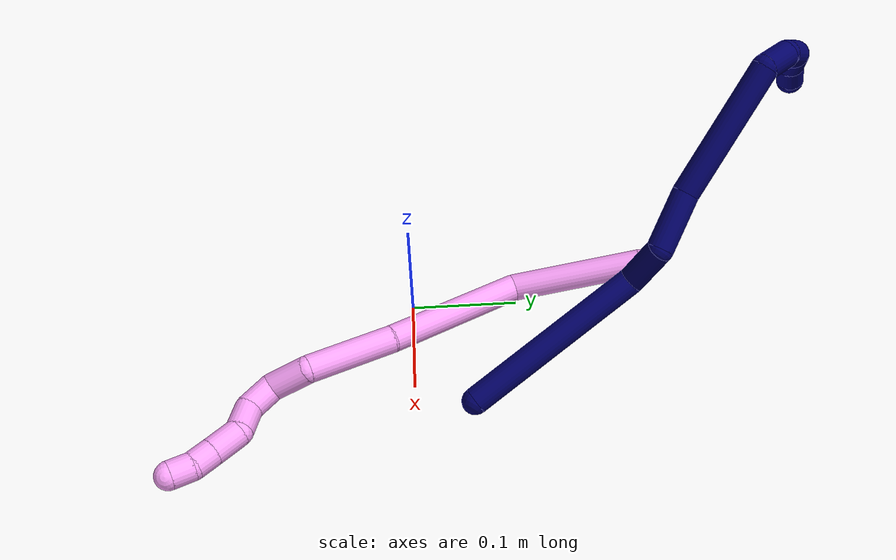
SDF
<sdf version="1.7">
 <world name="default">
  <model name="4">
   <static>0</static>
   <link name="4">
    <collision name="collision-cylinder-e_1_1_4">
     <pose>0.017106 -0.057696 0.009319 1.41067 0.284734 0.242886</pose>
     <geometry><cylinder><radius>0.0125</radius><length>0.12179</length></cylinder></geometry>
     <surface>
      <friction><ode><mu>1.16</mu><mu2>1.16</mu2><slip1>0</slip1><slip2>0</slip2></ode></friction>
      <contact><ode><kp>1e+06</kp><kd>1</kd><max_vel>0</max_vel><min_depth>0.001</min_depth></ode></contact>
     </surface>
    </collision>
    <visual name="visual-cylinder-e_1_1_4">
     <pose>0.017106 -0.057696 0.009319 1.41067 0.284734 0.242886</pose>
     <geometry><cylinder><radius>0.0125</radius><length>0.12179</length></cylinder></geometry>
     <material><ambient>1 0.65098 0.996078 1</ambient></material>
    </visual>
    <collision name="collision-cylinder-e_2_4_5">
     <pose>0.037699 -0.174745 -0.014338 2.0779 0.051324 0.087191</pose>
     <geometry><cylinder><radius>0.0125</radius><length>0.135975</length></cylinder></geometry>
     <surface>
      <friction><ode><mu>1.16</mu><mu2>1.16</mu2><slip1>0</slip1><slip2>0</slip2></ode></friction>
      <contact><ode><kp>1e+06</kp><kd>1</kd><max_vel>0</max_vel><min_depth>0.001</min_depth></ode></contact>
     </surface>
    </collision>
    <visual name="visual-cylinder-e_2_4_5">
     <pose>0.037699 -0.174745 -0.014338 2.0779 0.051324 0.087191</pose>
     <geometry><cylinder><radius>0.0125</radius><length>0.135975</length></cylinder></geometry>
     <material><ambient>1 0.65098 0.996078 1</ambient></material>
    </visual>
    <collision name="collision-cylinder-e_3_5_6">
     <pose>0.045656 -0.271027 -0.062581 1.96285 0.111365 0.166342</pose>
     <geometry><cylinder><radius>0.0125</radius><length>0.080419</length></cylinder></geometry>
     <surface>
      <friction><ode><mu>1.16</mu><mu2>1.16</mu2><slip1>0</slip1><slip2>0</slip2></ode></friction>
      <contact><ode><kp>1e+06</kp><kd>1</kd><max_vel>0</max_vel><min_depth>0.001</min_depth></ode></contact>
     </surface>
    </collision>
    <visual name="visual-cylinder-e_3_5_6">
     <pose>0.045656 -0.271027 -0.062581 1.96285 0.111365 0.166342</pose>
     <geometry><cylinder><radius>0.0125</radius><length>0.080419</length></cylinder></geometry>
     <material><ambient>1 0.65098 0.996078 1</ambient></material>
    </visual>
    <collision name="collision-cylinder-e_4_6_7">
     <pose>0.050645 -0.325865 -0.072842 1.29815 0.027982 0.021232</pose>
     <geometry><cylinder><radius>0.0125</radius><length>0.037209</length></cylinder></geometry>
     <surface>
      <friction><ode><mu>1.16</mu><mu2>1.16</mu2><slip1>0</slip1><slip2>0</slip2></ode></friction>
      <contact><ode><kp>1e+06</kp><kd>1</kd><max_vel>0</max_vel><min_depth>0.001</min_depth></ode></contact>
     </surface>
    </collision>
    <visual name="visual-cylinder-e_4_6_7">
     <pose>0.050645 -0.325865 -0.072842 1.29815 0.027982 0.021232</pose>
     <geometry><cylinder><radius>0.0125</radius><length>0.037209</length></cylinder></geometry>
     <material><ambient>1 0.65098 0.996078 1</ambient></material>
    </visual>
    <collision name="collision-cylinder-e_5_7_8">
     <pose>0.047407 -0.355875 -0.073303 1.99534 -0.275864 -0.423716</pose>
     <geometry><cylinder><radius>0.0125</radius><length>0.0276</length></cylinder></geometry>
     <surface>
      <friction><ode><mu>1.16</mu><mu2>1.16</mu2><slip1>0</slip1><slip2>0</slip2></ode></friction>
      <contact><ode><kp>1e+06</kp><kd>1</kd><max_vel>0</max_vel><min_depth>0.001</min_depth></ode></contact>
     </surface>
    </collision>
    <visual name="visual-cylinder-e_5_7_8">
     <pose>0.047407 -0.355875 -0.073303 1.99534 -0.275864 -0.423716</pose>
     <geometry><cylinder><radius>0.0125</radius><length>0.0276</length></cylinder></geometry>
     <material><ambient>1 0.65098 0.996078 1</ambient></material>
    </visual>
    <collision name="collision-cylinder-e_6_8_9">
     <pose>0.036181 -0.373942 -0.08956 2.63629 -0.54457 -1.64911</pose>
     <geometry><cylinder><radius>0.0125</radius><length>0.028826</length></cylinder></geometry>
     <surface>
      <friction><ode><mu>1.16</mu><mu2>1.16</mu2><slip1>0</slip1><slip2>0</slip2></ode></friction>
      <contact><ode><kp>1e+06</kp><kd>1</kd><max_vel>0</max_vel><min_depth>0.001</min_depth></ode></contact>
     </surface>
    </collision>
    <visual name="visual-cylinder-e_6_8_9">
     <pose>0.036181 -0.373942 -0.08956 2.63629 -0.54457 -1.64911</pose>
     <geometry><cylinder><radius>0.0125</radius><length>0.028826</length></cylinder></geometry>
     <material><ambient>1 0.65098 0.996078 1</ambient></material>
    </visual>
    <collision name="collision-cylinder-e_7_9_10">
     <pose>0.026247 -0.392032 -0.107071 2.07713 -0.176128 -0.29763</pose>
     <geometry><cylinder><radius>0.0125</radius><length>0.02816</length></cylinder></geometry>
     <surface>
      <friction><ode><mu>1.16</mu><mu2>1.16</mu2><slip1>0</slip1><slip2>0</slip2></ode></friction>
      <contact><ode><kp>1e+06</kp><kd>1</kd><max_vel>0</max_vel><min_depth>0.001</min_depth></ode></contact>
     </surface>
    </collision>
    <visual name="visual-cylinder-e_7_9_10">
     <pose>0.026247 -0.392032 -0.107071 2.07713 -0.176128 -0.29763</pose>
     <geometry><cylinder><radius>0.0125</radius><length>0.02816</length></cylinder></geometry>
     <material><ambient>1 0.65098 0.996078 1</ambient></material>
    </visual>
    <collision name="collision-cylinder-e_8_10_11">
     <pose>0.022196 -0.412353 -0.119305 2.16273 -0.159048 -0.297021</pose>
     <geometry><cylinder><radius>0.0125</radius><length>0.02001</length></cylinder></geometry>
     <surface>
      <friction><ode><mu>1.16</mu><mu2>1.16</mu2><slip1>0</slip1><slip2>0</slip2></ode></friction>
      <contact><ode><kp>1e+06</kp><kd>1</kd><max_vel>0</max_vel><min_depth>0.001</min_depth></ode></contact>
     </surface>
    </collision>
    <visual name="visual-cylinder-e_8_10_11">
     <pose>0.022196 -0.412353 -0.119305 2.16273 -0.159048 -0.297021</pose>
     <geometry><cylinder><radius>0.0125</radius><length>0.02001</length></cylinder></geometry>
     <material><ambient>1 0.65098 0.996078 1</ambient></material>
    </visual>
    <collision name="collision-cylinder-e_9_11_2">
     <pose>0.021606 -0.429636 -0.128888 1.99204 0.099575 0.153554</pose>
     <geometry><cylinder><radius>0.0125</radius><length>0.020011</length></cylinder></geometry>
     <surface>
      <friction><ode><mu>1.16</mu><mu2>1.16</mu2><slip1>0</slip1><slip2>0</slip2></ode></friction>
      <contact><ode><kp>1e+06</kp><kd>1</kd><max_vel>0</max_vel><min_depth>0.001</min_depth></ode></contact>
     </surface>
    </collision>
    <visual name="visual-cylinder-e_9_11_2">
     <pose>0.021606 -0.429636 -0.128888 1.99204 0.099575 0.153554</pose>
     <geometry><cylinder><radius>0.0125</radius><length>0.020011</length></cylinder></geometry>
     <material><ambient>1 0.65098 0.996078 1</ambient></material>
    </visual>
    <collision name="collision-sphere-2">
     <pose>0.0226 -0.438722 -0.132959 0 -0 0</pose>
     <geometry><sphere><radius>0.0125</radius></sphere></geometry>
     <surface>
      <friction><ode><mu>1.16</mu><mu2>1.16</mu2><slip1>0</slip1><slip2>0</slip2></ode></friction>
      <contact><ode><kp>1e+06</kp><kd>1</kd><max_vel>0</max_vel><min_depth>0.001</min_depth></ode></contact>
     </surface>
    </collision>
    <visual name="visual-sphere-2">
     <pose>0.0226 -0.438722 -0.132959 0 -0 0</pose>
     <geometry><sphere><radius>0.0125</radius></sphere></geometry>
     <material><ambient>1 0.65098 0.996078 1</ambient></material>
    </visual>
    <collision name="collision-sphere-11">
     <pose>0.020611 -0.420551 -0.124817 0 -0 0</pose>
     <geometry><sphere><radius>0.0125</radius></sphere></geometry>
     <surface>
      <friction><ode><mu>1.16</mu><mu2>1.16</mu2><slip1>0</slip1><slip2>0</slip2></ode></friction>
      <contact><ode><kp>1e+06</kp><kd>1</kd><max_vel>0</max_vel><min_depth>0.001</min_depth></ode></contact>
     </surface>
    </collision>
    <visual name="visual-sphere-11">
     <pose>0.020611 -0.420551 -0.124817 0 -0 0</pose>
     <geometry><sphere><radius>0.0125</radius></sphere></geometry>
     <material><ambient>1 0.65098 0.996078 1</ambient></material>
    </visual>
    <collision name="collision-sphere-10">
     <pose>0.02378 -0.404155 -0.113793 0 -0 0</pose>
     <geometry><sphere><radius>0.0125</radius></sphere></geometry>
     <surface>
      <friction><ode><mu>1.16</mu><mu2>1.16</mu2><slip1>0</slip1><slip2>0</slip2></ode></friction>
      <contact><ode><kp>1e+06</kp><kd>1</kd><max_vel>0</max_vel><min_depth>0.001</min_depth></ode></contact>
     </surface>
    </collision>
    <visual name="visual-sphere-10">
     <pose>0.02378 -0.404155 -0.113793 0 -0 0</pose>
     <geometry><sphere><radius>0.0125</radius></sphere></geometry>
     <material><ambient>1 0.65098 0.996078 1</ambient></material>
    </visual>
    <collision name="collision-sphere-9">
     <pose>0.028714 -0.37991 -0.100348 0 -0 0</pose>
     <geometry><sphere><radius>0.0125</radius></sphere></geometry>
     <surface>
      <friction><ode><mu>1.16</mu><mu2>1.16</mu2><slip1>0</slip1><slip2>0</slip2></ode></friction>
      <contact><ode><kp>1e+06</kp><kd>1</kd><max_vel>0</max_vel><min_depth>0.001</min_depth></ode></contact>
     </surface>
    </collision>
    <visual name="visual-sphere-9">
     <pose>0.028714 -0.37991 -0.100348 0 -0 0</pose>
     <geometry><sphere><radius>0.0125</radius></sphere></geometry>
     <material><ambient>1 0.65098 0.996078 1</ambient></material>
    </visual>
    <collision name="collision-sphere-4">
     <pose>0.034211 -0.115391 0.018637 0 -0 0</pose>
     <geometry><sphere><radius>0.0125</radius></sphere></geometry>
     <surface>
      <friction><ode><mu>1.16</mu><mu2>1.16</mu2><slip1>0</slip1><slip2>0</slip2></ode></friction>
      <contact><ode><kp>1e+06</kp><kd>1</kd><max_vel>0</max_vel><min_depth>0.001</min_depth></ode></contact>
     </surface>
    </collision>
    <visual name="visual-sphere-4">
     <pose>0.034211 -0.115391 0.018637 0 -0 0</pose>
     <geometry><sphere><radius>0.0125</radius></sphere></geometry>
     <material><ambient>1 0.65098 0.996078 1</ambient></material>
    </visual>
    <collision name="collision-sphere-1">
     <geometry><sphere><radius>0.0125</radius></sphere></geometry>
     <surface>
      <friction><ode><mu>1.16</mu><mu2>1.16</mu2><slip1>0</slip1><slip2>0</slip2></ode></friction>
      <contact><ode><kp>1e+06</kp><kd>1</kd><max_vel>0</max_vel><min_depth>0.001</min_depth></ode></contact>
     </surface>
    </collision>
    <visual name="visual-sphere-1">
     <geometry><sphere><radius>0.0125</radius></sphere></geometry>
     <material><ambient>1 0.65098 0.996078 1</ambient></material>
    </visual>
    <collision name="collision-sphere-8">
     <pose>0.043648 -0.367974 -0.078773 0 -0 0</pose>
     <geometry><sphere><radius>0.0125</radius></sphere></geometry>
     <surface>
      <friction><ode><mu>1.16</mu><mu2>1.16</mu2><slip1>0</slip1><slip2>0</slip2></ode></friction>
      <contact><ode><kp>1e+06</kp><kd>1</kd><max_vel>0</max_vel><min_depth>0.001</min_depth></ode></contact>
     </surface>
    </collision>
    <visual name="visual-sphere-8">
     <pose>0.043648 -0.367974 -0.078773 0 -0 0</pose>
     <geometry><sphere><radius>0.0125</radius></sphere></geometry>
     <material><ambient>1 0.65098 0.996078 1</ambient></material>
    </visual>
    <collision name="collision-sphere-5">
     <pose>0.041187 -0.234098 -0.047313 0 -0 0</pose>
     <geometry><sphere><radius>0.0125</radius></sphere></geometry>
     <surface>
      <friction><ode><mu>1.16</mu><mu2>1.16</mu2><slip1>0</slip1><slip2>0</slip2></ode></friction>
      <contact><ode><kp>1e+06</kp><kd>1</kd><max_vel>0</max_vel><min_depth>0.001</min_depth></ode></contact>
     </surface>
    </collision>
    <visual name="visual-sphere-5">
     <pose>0.041187 -0.234098 -0.047313 0 -0 0</pose>
     <geometry><sphere><radius>0.0125</radius></sphere></geometry>
     <material><ambient>1 0.65098 0.996078 1</ambient></material>
    </visual>
    <collision name="collision-sphere-6">
     <pose>0.050124 -0.307955 -0.07785 0 -0 0</pose>
     <geometry><sphere><radius>0.0125</radius></sphere></geometry>
     <surface>
      <friction><ode><mu>1.16</mu><mu2>1.16</mu2><slip1>0</slip1><slip2>0</slip2></ode></friction>
      <contact><ode><kp>1e+06</kp><kd>1</kd><max_vel>0</max_vel><min_depth>0.001</min_depth></ode></contact>
     </surface>
    </collision>
    <visual name="visual-sphere-6">
     <pose>0.050124 -0.307955 -0.07785 0 -0 0</pose>
     <geometry><sphere><radius>0.0125</radius></sphere></geometry>
     <material><ambient>1 0.65098 0.996078 1</ambient></material>
    </visual>
    <collision name="collision-sphere-7">
     <pose>0.051165 -0.343775 -0.067834 0 -0 0</pose>
     <geometry><sphere><radius>0.0125</radius></sphere></geometry>
     <surface>
      <friction><ode><mu>1.16</mu><mu2>1.16</mu2><slip1>0</slip1><slip2>0</slip2></ode></friction>
      <contact><ode><kp>1e+06</kp><kd>1</kd><max_vel>0</max_vel><min_depth>0.001</min_depth></ode></contact>
     </surface>
    </collision>
    <visual name="visual-sphere-7">
     <pose>0.051165 -0.343775 -0.067834 0 -0 0</pose>
     <geometry><sphere><radius>0.0125</radius></sphere></geometry>
     <material><ambient>1 0.65098 0.996078 1</ambient></material>
    </visual>
    <inertial>
     <pose>0.033465 -0.226396 -0.042288 0 -0 0</pose>
     <mass>0.5</mass>
     <inertia>
      <ixx>0.000477</ixx>
      <ixy>0</ixy>
      <ixz>0</ixz>
      <iyy>-6.3e-05</iyy>
      <iyz>0</iyz>
      <izz>0.000324</izz>
     </inertia>
    </inertial>
   </link>
   <pose>0.018887 0.214167 0.066307 2.74416 -0.635027 -2.60101</pose>
  </model>
  <model name="7">
   <static>0</static>
   <link name="7">
    <collision name="collision-cylinder-e_1_1_4">
     <pose>-0.029023 0.016226 0.082254 -0.194765 -0.333267 0.032859</pose>
     <geometry><cylinder><radius>0.0125</radius><length>0.177441</length></cylinder></geometry>
     <surface>
      <friction><ode><mu>1.16</mu><mu2>1.16</mu2><slip1>0</slip1><slip2>0</slip2></ode></friction>
      <contact><ode><kp>1e+06</kp><kd>1</kd><max_vel>0</max_vel><min_depth>0.001</min_depth></ode></contact>
     </surface>
    </collision>
    <visual name="visual-cylinder-e_1_1_4">
     <pose>-0.029023 0.016226 0.082254 -0.194765 -0.333267 0.032859</pose>
     <geometry><cylinder><radius>0.0125</radius><length>0.177441</length></cylinder></geometry>
     <material><ambient>0.003922 0 0.403922 1</ambient></material>
    </visual>
    <collision name="collision-cylinder-e_2_4_5">
     <pose>-0.056223 0.049109 0.179332 -0.843549 0.081606 -0.036633</pose>
     <geometry><cylinder><radius>0.0125</radius><length>0.044746</length></cylinder></geometry>
     <surface>
      <friction><ode><mu>1.16</mu><mu2>1.16</mu2><slip1>0</slip1><slip2>0</slip2></ode></friction>
      <contact><ode><kp>1e+06</kp><kd>1</kd><max_vel>0</max_vel><min_depth>0.001</min_depth></ode></contact>
     </surface>
    </collision>
    <visual name="visual-cylinder-e_2_4_5">
     <pose>-0.056223 0.049109 0.179332 -0.843549 0.081606 -0.036633</pose>
     <geometry><cylinder><radius>0.0125</radius><length>0.044746</length></cylinder></geometry>
     <material><ambient>0.003922 0 0.403922 1</ambient></material>
    </visual>
    <collision name="collision-cylinder-e_3_5_6">
     <pose>-0.050583 0.068349 0.221103 -0.095575 0.140043 -0.006708</pose>
     <geometry><cylinder><radius>0.0125</radius><length>0.054675</length></cylinder></geometry>
     <surface>
      <friction><ode><mu>1.16</mu><mu2>1.16</mu2><slip1>0</slip1><slip2>0</slip2></ode></friction>
      <contact><ode><kp>1e+06</kp><kd>1</kd><max_vel>0</max_vel><min_depth>0.001</min_depth></ode></contact>
     </surface>
    </collision>
    <visual name="visual-cylinder-e_3_5_6">
     <pose>-0.050583 0.068349 0.221103 -0.095575 0.140043 -0.006708</pose>
     <geometry><cylinder><radius>0.0125</radius><length>0.054675</length></cylinder></geometry>
     <material><ambient>0.003922 0 0.403922 1</ambient></material>
    </visual>
    <collision name="collision-cylinder-e_4_6_7">
     <pose>-0.042417 0.089193 0.309721 -0.287861 0.06754 -0.009792</pose>
     <geometry><cylinder><radius>0.0125</radius><length>0.12893</length></cylinder></geometry>
     <surface>
      <friction><ode><mu>1.16</mu><mu2>1.16</mu2><slip1>0</slip1><slip2>0</slip2></ode></friction>
      <contact><ode><kp>1e+06</kp><kd>1</kd><max_vel>0</max_vel><min_depth>0.001</min_depth></ode></contact>
     </surface>
    </collision>
    <visual name="visual-cylinder-e_4_6_7">
     <pose>-0.042417 0.089193 0.309721 -0.287861 0.06754 -0.009792</pose>
     <geometry><cylinder><radius>0.0125</radius><length>0.12893</length></cylinder></geometry>
     <material><ambient>0.003922 0 0.403922 1</ambient></material>
    </visual>
    <collision name="collision-cylinder-e_5_7_8">
     <pose>-0.044937 0.103746 0.384533 0.27498 -0.466235 -0.065681</pose>
     <geometry><cylinder><radius>0.0125</radius><length>0.030569</length></cylinder></geometry>
     <surface>
      <friction><ode><mu>1.16</mu><mu2>1.16</mu2><slip1>0</slip1><slip2>0</slip2></ode></friction>
      <contact><ode><kp>1e+06</kp><kd>1</kd><max_vel>0</max_vel><min_depth>0.001</min_depth></ode></contact>
     </surface>
    </collision>
    <visual name="visual-cylinder-e_5_7_8">
     <pose>-0.044937 0.103746 0.384533 0.27498 -0.466235 -0.065681</pose>
     <geometry><cylinder><radius>0.0125</radius><length>0.030569</length></cylinder></geometry>
     <material><ambient>0.003922 0 0.403922 1</ambient></material>
    </visual>
    <collision name="collision-cylinder-e_6_8_9">
     <pose>-0.058477 0.092669 0.403983 0.862703 -0.602262 -0.283966</pose>
     <geometry><cylinder><radius>0.0125</radius><length>0.023547</length></cylinder></geometry>
     <surface>
      <friction><ode><mu>1.16</mu><mu2>1.16</mu2><slip1>0</slip1><slip2>0</slip2></ode></friction>
      <contact><ode><kp>1e+06</kp><kd>1</kd><max_vel>0</max_vel><min_depth>0.001</min_depth></ode></contact>
     </surface>
    </collision>
    <visual name="visual-cylinder-e_6_8_9">
     <pose>-0.058477 0.092669 0.403983 0.862703 -0.602262 -0.283966</pose>
     <geometry><cylinder><radius>0.0125</radius><length>0.023547</length></cylinder></geometry>
     <material><ambient>0.003922 0 0.403922 1</ambient></material>
    </visual>
    <collision name="collision-cylinder-e_7_9_10">
     <pose>-0.069284 0.076308 0.408843 1.73069 -0.426405 -0.497863</pose>
     <geometry><cylinder><radius>0.0125</radius><length>0.020005</length></cylinder></geometry>
     <surface>
      <friction><ode><mu>1.16</mu><mu2>1.16</mu2><slip1>0</slip1><slip2>0</slip2></ode></friction>
      <contact><ode><kp>1e+06</kp><kd>1</kd><max_vel>0</max_vel><min_depth>0.001</min_depth></ode></contact>
     </surface>
    </collision>
    <visual name="visual-cylinder-e_7_9_10">
     <pose>-0.069284 0.076308 0.408843 1.73069 -0.426405 -0.497863</pose>
     <geometry><cylinder><radius>0.0125</radius><length>0.020005</length></cylinder></geometry>
     <material><ambient>0.003922 0 0.403922 1</ambient></material>
    </visual>
    <collision name="collision-cylinder-e_8_10_2">
     <pose>-0.079905 0.059943 0.405283 1.84943 -0.701755 -0.903822</pose>
     <geometry><cylinder><radius>0.0125</radius><length>0.020087</length></cylinder></geometry>
     <surface>
      <friction><ode><mu>1.16</mu><mu2>1.16</mu2><slip1>0</slip1><slip2>0</slip2></ode></friction>
      <contact><ode><kp>1e+06</kp><kd>1</kd><max_vel>0</max_vel><min_depth>0.001</min_depth></ode></contact>
     </surface>
    </collision>
    <visual name="visual-cylinder-e_8_10_2">
     <pose>-0.079905 0.059943 0.405283 1.84943 -0.701755 -0.903822</pose>
     <geometry><cylinder><radius>0.0125</radius><length>0.020087</length></cylinder></geometry>
     <material><ambient>0.003922 0 0.403922 1</ambient></material>
    </visual>
    <collision name="collision-sphere-2">
     <pose>-0.086388 0.052569 0.403174 0 -0 0</pose>
     <geometry><sphere><radius>0.0125</radius></sphere></geometry>
     <surface>
      <friction><ode><mu>1.16</mu><mu2>1.16</mu2><slip1>0</slip1><slip2>0</slip2></ode></friction>
      <contact><ode><kp>1e+06</kp><kd>1</kd><max_vel>0</max_vel><min_depth>0.001</min_depth></ode></contact>
     </surface>
    </collision>
    <visual name="visual-sphere-2">
     <pose>-0.086388 0.052569 0.403174 0 -0 0</pose>
     <geometry><sphere><radius>0.0125</radius></sphere></geometry>
     <material><ambient>0.003922 0 0.403922 1</ambient></material>
    </visual>
    <collision name="collision-sphere-10">
     <pose>-0.073421 0.067318 0.407393 0 -0 0</pose>
     <geometry><sphere><radius>0.0125</radius></sphere></geometry>
     <surface>
      <friction><ode><mu>1.16</mu><mu2>1.16</mu2><slip1>0</slip1><slip2>0</slip2></ode></friction>
      <contact><ode><kp>1e+06</kp><kd>1</kd><max_vel>0</max_vel><min_depth>0.001</min_depth></ode></contact>
     </surface>
    </collision>
    <visual name="visual-sphere-10">
     <pose>-0.073421 0.067318 0.407393 0 -0 0</pose>
     <geometry><sphere><radius>0.0125</radius></sphere></geometry>
     <material><ambient>0.003922 0 0.403922 1</ambient></material>
    </visual>
    <collision name="collision-sphere-9">
     <pose>-0.065147 0.085299 0.410293 0 -0 0</pose>
     <geometry><sphere><radius>0.0125</radius></sphere></geometry>
     <surface>
      <friction><ode><mu>1.16</mu><mu2>1.16</mu2><slip1>0</slip1><slip2>0</slip2></ode></friction>
      <contact><ode><kp>1e+06</kp><kd>1</kd><max_vel>0</max_vel><min_depth>0.001</min_depth></ode></contact>
     </surface>
    </collision>
    <visual name="visual-sphere-9">
     <pose>-0.065147 0.085299 0.410293 0 -0 0</pose>
     <geometry><sphere><radius>0.0125</radius></sphere></geometry>
     <material><ambient>0.003922 0 0.403922 1</ambient></material>
    </visual>
    <collision name="collision-sphere-4">
     <pose>-0.058047 0.032452 0.164508 0 -0 0</pose>
     <geometry><sphere><radius>0.0125</radius></sphere></geometry>
     <surface>
      <friction><ode><mu>1.16</mu><mu2>1.16</mu2><slip1>0</slip1><slip2>0</slip2></ode></friction>
      <contact><ode><kp>1e+06</kp><kd>1</kd><max_vel>0</max_vel><min_depth>0.001</min_depth></ode></contact>
     </surface>
    </collision>
    <visual name="visual-sphere-4">
     <pose>-0.058047 0.032452 0.164508 0 -0 0</pose>
     <geometry><sphere><radius>0.0125</radius></sphere></geometry>
     <material><ambient>0.003922 0 0.403922 1</ambient></material>
    </visual>
    <collision name="collision-sphere-1">
     <geometry><sphere><radius>0.0125</radius></sphere></geometry>
     <surface>
      <friction><ode><mu>1.16</mu><mu2>1.16</mu2><slip1>0</slip1><slip2>0</slip2></ode></friction>
      <contact><ode><kp>1e+06</kp><kd>1</kd><max_vel>0</max_vel><min_depth>0.001</min_depth></ode></contact>
     </surface>
    </collision>
    <visual name="visual-sphere-1">
     <geometry><sphere><radius>0.0125</radius></sphere></geometry>
     <material><ambient>0.003922 0 0.403922 1</ambient></material>
    </visual>
    <collision name="collision-sphere-8">
     <pose>-0.051807 0.100038 0.397673 0 -0 0</pose>
     <geometry><sphere><radius>0.0125</radius></sphere></geometry>
     <surface>
      <friction><ode><mu>1.16</mu><mu2>1.16</mu2><slip1>0</slip1><slip2>0</slip2></ode></friction>
      <contact><ode><kp>1e+06</kp><kd>1</kd><max_vel>0</max_vel><min_depth>0.001</min_depth></ode></contact>
     </surface>
    </collision>
    <visual name="visual-sphere-8">
     <pose>-0.051807 0.100038 0.397673 0 -0 0</pose>
     <geometry><sphere><radius>0.0125</radius></sphere></geometry>
     <material><ambient>0.003922 0 0.403922 1</ambient></material>
    </visual>
    <collision name="collision-sphere-5">
     <pose>-0.054399 0.065766 0.194157 0 -0 0</pose>
     <geometry><sphere><radius>0.0125</radius></sphere></geometry>
     <surface>
      <friction><ode><mu>1.16</mu><mu2>1.16</mu2><slip1>0</slip1><slip2>0</slip2></ode></friction>
      <contact><ode><kp>1e+06</kp><kd>1</kd><max_vel>0</max_vel><min_depth>0.001</min_depth></ode></contact>
     </surface>
    </collision>
    <visual name="visual-sphere-5">
     <pose>-0.054399 0.065766 0.194157 0 -0 0</pose>
     <geometry><sphere><radius>0.0125</radius></sphere></geometry>
     <material><ambient>0.003922 0 0.403922 1</ambient></material>
    </visual>
    <collision name="collision-sphere-6">
     <pose>-0.046767 0.070933 0.248049 0 -0 0</pose>
     <geometry><sphere><radius>0.0125</radius></sphere></geometry>
     <surface>
      <friction><ode><mu>1.16</mu><mu2>1.16</mu2><slip1>0</slip1><slip2>0</slip2></ode></friction>
      <contact><ode><kp>1e+06</kp><kd>1</kd><max_vel>0</max_vel><min_depth>0.001</min_depth></ode></contact>
     </surface>
    </collision>
    <visual name="visual-sphere-6">
     <pose>-0.046767 0.070933 0.248049 0 -0 0</pose>
     <geometry><sphere><radius>0.0125</radius></sphere></geometry>
     <material><ambient>0.003922 0 0.403922 1</ambient></material>
    </visual>
    <collision name="collision-sphere-7">
     <pose>-0.038066 0.107453 0.371393 0 -0 0</pose>
     <geometry><sphere><radius>0.0125</radius></sphere></geometry>
     <surface>
      <friction><ode><mu>1.16</mu><mu2>1.16</mu2><slip1>0</slip1><slip2>0</slip2></ode></friction>
      <contact><ode><kp>1e+06</kp><kd>1</kd><max_vel>0</max_vel><min_depth>0.001</min_depth></ode></contact>
     </surface>
    </collision>
    <visual name="visual-sphere-7">
     <pose>-0.038066 0.107453 0.371393 0 -0 0</pose>
     <geometry><sphere><radius>0.0125</radius></sphere></geometry>
     <material><ambient>0.003922 0 0.403922 1</ambient></material>
    </visual>
    <inertial>
     <pose>-0.043284 0.056795 0.224456 0 -0 0</pose>
     <mass>0.5</mass>
     <inertia>
      <ixx>0.000664</ixx>
      <ixy>0</ixy>
      <ixz>0</ixz>
      <iyy>0.000682</iyy>
      <iyz>0</iyz>
      <izz>3.3e-05</izz>
     </inertia>
    </inertial>
   </link>
   <pose>0.129537 0.053861 0.012123 0.953934 -0.593335 -1.88244</pose>
  </model>
 </world>
</sdf>
